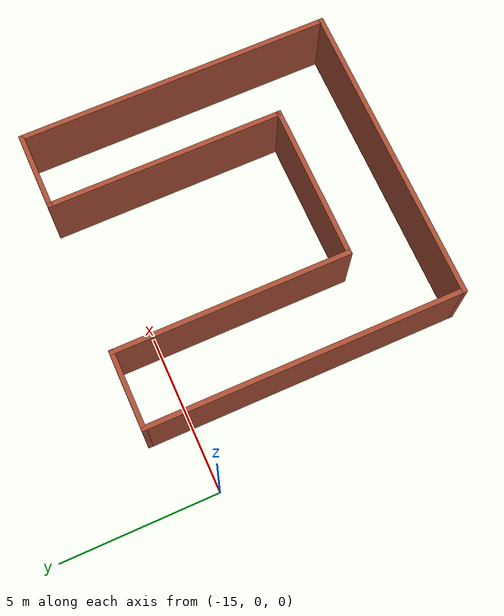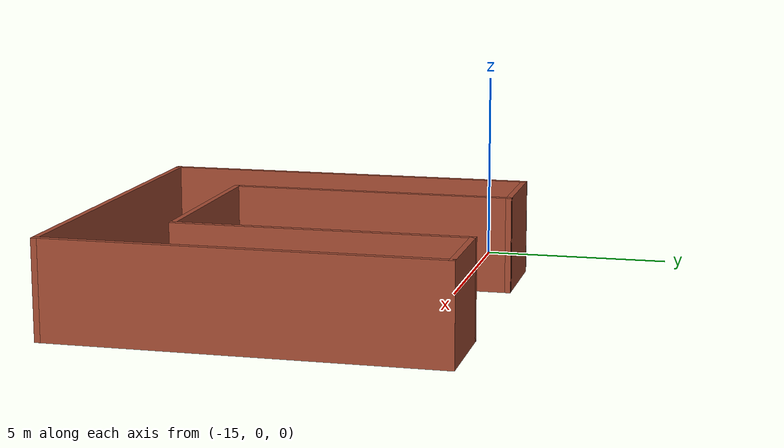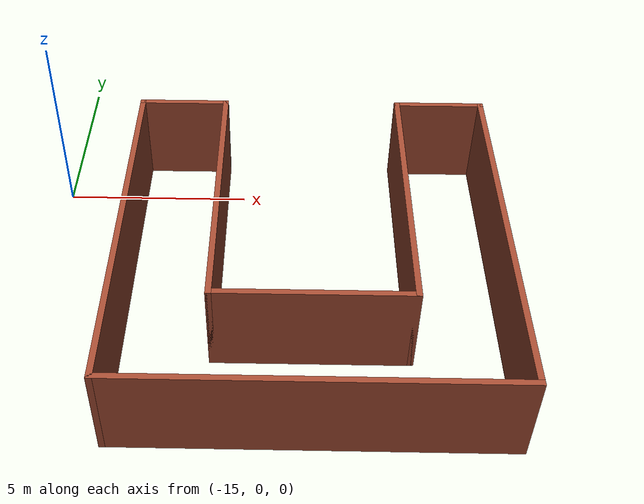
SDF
<?xml version='1.0'?>
<sdf version='1.6'>
  <model name='mybuilding'>
    <pose frame=''>-8.10707 -3.59889 0 0 -0 0</pose>
    <link name='Wall_61'>
      <collision name='Wall_61_Collision'>
        <geometry>
          <box>
            <size>10 0.15 2.5</size>
          </box>
        </geometry>
        <pose frame=''>0 0 1.25 0 -0 0</pose>
      </collision>
      <visual name='Wall_61_Visual'>
        <pose frame=''>0 0 1.25 0 -0 0</pose>
        <geometry>
          <box>
            <size>10 0.15 2.5</size>
          </box>
        </geometry>
        <material>
          <script>
            <uri>file://media/materials/scripts/gazebo.material</uri>
            <name>Gazebo/Bricks</name>
          </script>
          <ambient>1 1 1 1</ambient>
        </material>
        <meta>
          <layer>0</layer>
        </meta>
      </visual>
      <pose frame=''>-4.77493 -0.000113 0 0 -0 1.5708</pose>
    </link>
    <link name='Wall_62'>
      <collision name='Wall_62_Collision'>
        <geometry>
          <box>
            <size>2.5 0.15 2.5</size>
          </box>
        </geometry>
        <pose frame=''>0 0 1.25 0 -0 0</pose>
      </collision>
      <visual name='Wall_62_Visual'>
        <pose frame=''>0 0 1.25 0 -0 0</pose>
        <geometry>
          <box>
            <size>2.5 0.15 2.5</size>
          </box>
        </geometry>
        <material>
          <script>
            <uri>file://media/materials/scripts/gazebo.material</uri>
            <name>Gazebo/Bricks</name>
          </script>
          <ambient>1 1 1 1</ambient>
        </material>
        <meta>
          <layer>0</layer>
        </meta>
      </visual>
      <pose frame=''>-3.60007 4.925 0 0 -0 9.4e-05</pose>
    </link>
    <link name='Wall_63'>
      <collision name='Wall_63_Collision'>
        <geometry>
          <box>
            <size>7.5 0.15 2.5</size>
          </box>
        </geometry>
        <pose frame=''>0 0 1.25 0 -0 0</pose>
      </collision>
      <visual name='Wall_63_Visual'>
        <pose frame=''>0 0 1.25 0 -0 0</pose>
        <geometry>
          <box>
            <size>7.5 0.15 2.5</size>
          </box>
        </geometry>
        <material>
          <script>
            <uri>file://media/materials/scripts/gazebo.material</uri>
            <name>Gazebo/Bricks</name>
          </script>
          <ambient>1 1 1 1</ambient>
        </material>
        <meta>
          <layer>0</layer>
        </meta>
      </visual>
      <pose frame=''>-2.42521 1.25011 0 0 0 -1.5708</pose>
    </link>
    <link name='Wall_64'>
      <collision name='Wall_64_Collision'>
        <geometry>
          <box>
            <size>5 0.15 2.5</size>
          </box>
        </geometry>
        <pose frame=''>0 0 1.25 0 -0 0</pose>
      </collision>
      <visual name='Wall_64_Visual'>
        <pose frame=''>0 0 1.25 0 -0 0</pose>
        <geometry>
          <box>
            <size>5 0.15 2.5</size>
          </box>
        </geometry>
        <material>
          <script>
            <uri>file://media/materials/scripts/gazebo.material</uri>
            <name>Gazebo/Bricks</name>
          </script>
          <ambient>1 1 1 1</ambient>
        </material>
        <meta>
          <layer>0</layer>
        </meta>
      </visual>
      <pose frame=''>-0.000209 -2.42489 0 0 -0 0</pose>
    </link>
    <link name='Wall_65'>
      <collision name='Wall_65_Collision'>
        <geometry>
          <box>
            <size>7.5 0.15 2.5</size>
          </box>
        </geometry>
        <pose frame=''>0 0 1.25 0 -0 0</pose>
      </collision>
      <visual name='Wall_65_Visual'>
        <pose frame=''>0 0 1.25 0 -0 0</pose>
        <geometry>
          <box>
            <size>7.5 0.15 2.5</size>
          </box>
        </geometry>
        <material>
          <script>
            <uri>file://media/materials/scripts/gazebo.material</uri>
            <name>Gazebo/Bricks</name>
          </script>
          <ambient>1 1 1 1</ambient>
        </material>
        <meta>
          <layer>0</layer>
        </meta>
      </visual>
      <pose frame=''>2.42479 1.25011 0 0 -0 1.5708</pose>
    </link>
    <link name='Wall_66'>
      <collision name='Wall_66_Collision'>
        <geometry>
          <box>
            <size>2.5 0.15 2.5</size>
          </box>
        </geometry>
        <pose frame=''>0 0 1.25 0 -0 0</pose>
      </collision>
      <visual name='Wall_66_Visual'>
        <pose frame=''>0 0 1.25 0 -0 0</pose>
        <geometry>
          <box>
            <size>2.5 0.15 2.5</size>
          </box>
        </geometry>
        <material>
          <script>
            <uri>file://media/materials/scripts/gazebo.material</uri>
            <name>Gazebo/Bricks</name>
          </script>
          <ambient>1 1 1 1</ambient>
        </material>
        <meta>
          <layer>0</layer>
        </meta>
      </visual>
      <pose frame=''>3.59979 4.92511 0 0 -0 0</pose>
    </link>
    <link name='Wall_67'>
      <collision name='Wall_67_Collision'>
        <geometry>
          <box>
            <size>10 0.15 2.5</size>
          </box>
        </geometry>
        <pose frame=''>0 0 1.25 0 -0 0</pose>
      </collision>
      <visual name='Wall_67_Visual'>
        <pose frame=''>0 0 1.25 0 -0 0</pose>
        <geometry>
          <box>
            <size>10 0.15 2.5</size>
          </box>
        </geometry>
        <material>
          <script>
            <uri>file://media/materials/scripts/gazebo.material</uri>
            <name>Gazebo/Bricks</name>
          </script>
          <ambient>1 1 1 1</ambient>
        </material>
        <meta>
          <layer>0</layer>
        </meta>
      </visual>
      <pose frame=''>4.77493 -3e-06 0 0 0 -1.57077</pose>
    </link>
    <link name='Wall_68'>
      <collision name='Wall_68_Collision'>
        <geometry>
          <box>
            <size>9.7 0.15 2.5</size>
          </box>
        </geometry>
        <pose frame=''>0 0 1.25 0 -0 0</pose>
      </collision>
      <visual name='Wall_68_Visual'>
        <pose frame=''>0 0 1.25 0 -0 0</pose>
        <geometry>
          <box>
            <size>9.7 0.15 2.5</size>
          </box>
        </geometry>
        <material>
          <script>
            <uri>file://media/materials/scripts/gazebo.material</uri>
            <name>Gazebo/Bricks</name>
          </script>
          <ambient>1 1 1 1</ambient>
        </material>
        <meta>
          <layer>0</layer>
        </meta>
      </visual>
      <pose frame=''>7.2e-05 -4.92511 0 0 -0 3.14159</pose>
    </link>
    <static>1</static>
  </model>
</sdf>
